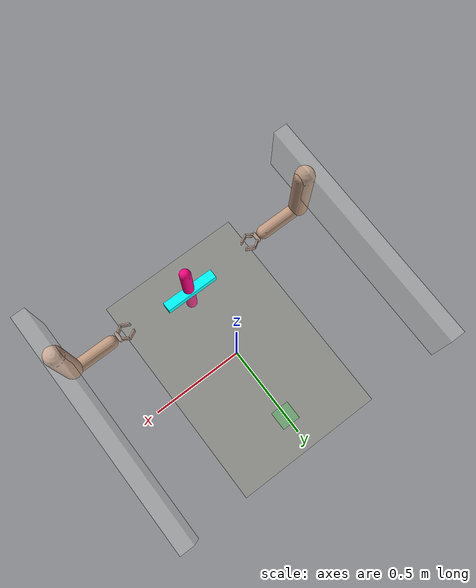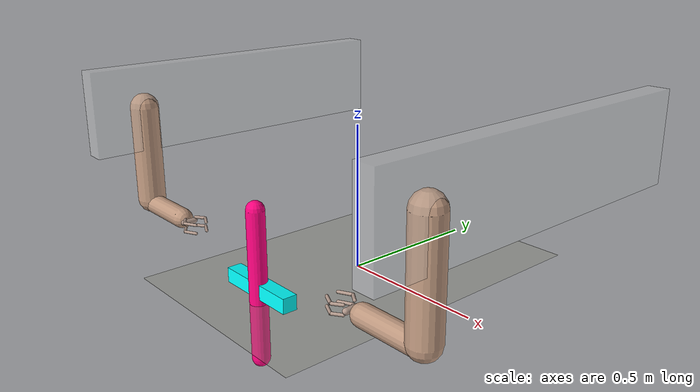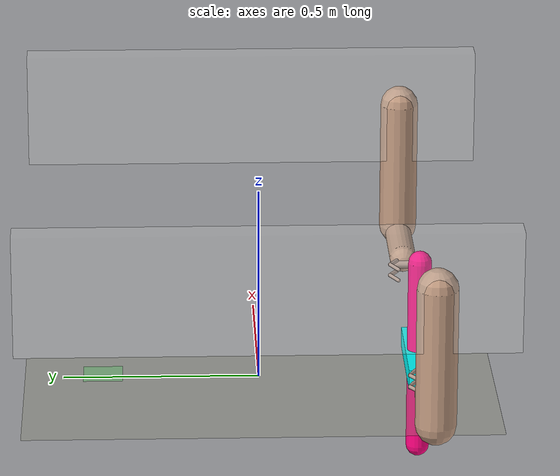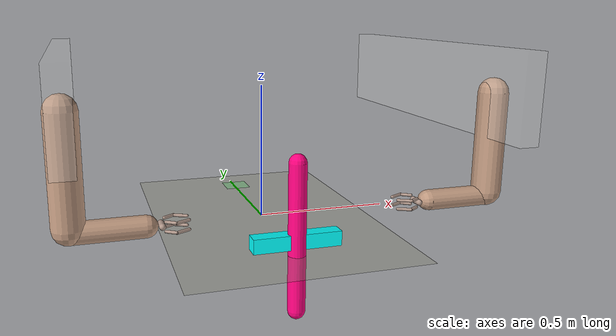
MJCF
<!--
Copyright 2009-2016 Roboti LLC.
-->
<mujoco model="arm_claw (v1.31)">
	<compiler 	inertiafromgeom="true"
				angle="radian"/>

	<size 	nuser_jnt="1"
			nuser_geom="1"/>

	<option	timestep="0.005"
			gravity="0 0 -3"
			viscosity="0"
			iterations="20"/>

	<asset>
		<material name="MatGnd" specular=".3" shininess=".3" reflectance="0.3" rgba=".5 .55 .5 1"/>
	</asset>

	<default>
		<joint limited="true" damping="1" stiffness="0" armature=".1" user="0"/>
		<geom solref="0.008 1" solimp="0.95 0.95 0.01" margin="0.001" user="0"/>
		<motor ctrllimited="true" ctrlrange="-1 1"/>
		<position ctrllimited="false"/>

		<default class='0'>
			<geom friction="1 0.005 0.001" rgba=".75 .6 .5 1" contype="1" conaffinity="0"/>
		</default>

		<default class='1'>
			<geom friction="1 0.005 0.001" rgba=".7 .6 .55 1" contype="1" conaffinity="0"/>
		</default>

		<default class='arm'>
			<joint damping="5"/>
		</default>
	</default>

	<worldbody>
		<light directional="true" cutoff="40" exponent="10" diffuse=".4 .4 .4" specular=".7 .7 .7" pos="0 0 1.5" dir="0 0 -1"/>
		<geom name="tableTop" material="MatGnd" type="plane" pos="0 0 0" size="0.4 0.6 0.5" rgba=".6 .6 .5 1" contype="1" conaffinity="1"/>

		<!--  ================= ARM ================= /-->
		<body name="board1" pos="-0.7 0 0.5" quat="0 0 0 0">

			<geom type="box" rgba="1 1 1 0.15" size="0.035 0.6 0.15" class="0"/>
			<body name="upperarm" pos="0 -0.4 0">
				<geom class="0" type="capsule" fromto="0 0 0 0 0 -0.345" size="0.05"/>
				<joint name='slidex1' type='slide' axis='0 1 0' range='-0.1 1'/>
				<joint name='slidey1' type='slide' axis='0 0 1' range='-0.1 0.2'/>
				<joint name='slidez1' type='slide' axis='1 0 0' range='0 0.25'/>

				<body name="forearm" pos="0 0 -0.36">
					<geom class="0" type="capsule" fromto="0 0 0 0.225 0 0" size="0.035"/>

		<!--  ================= Palm ================= /-->

					<body name="claw" pos="0.27 0 0" quat="0 1 0 0">
						<geom class="1" name="Geomclaw" type="capsule" fromto="0 .02 0 0 -.02 0" size="0.01" />
						<joint name="w_abduction" type="hinge" pos="0 0 0" axis="0 0 1" range="-.5 .5" user="006"/>
						<joint name="w_flexion" type="hinge" pos="0 0 0" axis="0 -1 0" range="-1.05 1.05" user="007"/>

						<body name="rightclaw" pos=".01 -.02 0" >
							<geom name="rightclaw_it" class="1" type="capsule" fromto="0 0 0.015 .03 -.02 0.015" 	size="0.005" />
							<geom name="rightclaw_ot" class="1" type="capsule" fromto=".03 -.02 0.015 .07 0 0.015" size="0.005" />
							<geom name="rightclaw_ib" class="1" type="capsule" fromto="0 0 -0.015 .03 -.02 -0.015" 	size="0.005" />
							<geom name="rightclaw_ob" class="1" type="capsule" fromto=".03 -.02 -0.015 .07 0 -0.015" size="0.005" />

						</body>

						<body name="leftclaw" pos=".01 .02 0">
							<geom name="leftclaw_it" class="1" type="capsule" fromto="0 0 0.015 .03 .02 0.015" 	size="0.005" />
							<geom name="leftclaw_ot" class="1" type="capsule" fromto=".03 .02 0.015 .07 0 0.015" size="0.005" />
							<geom name="leftclaw_ib" class="1" type="capsule" fromto="0 0 -0.015 .03 .02 -0.015" 	size="0.005" />
							<geom name="leftclaw_ob" class="1" type="capsule" fromto=".03 .02 -0.015 .07 0 -0.015" size="0.005" />
							<joint name="lc_close" type="hinge" pos="0 0 0" axis="0 0 1" range="-1.05 1.05" user="009"/>
						</body>

					</body>

				</body>

			</body>
		</body>

		<!--  ================= ARM 2 ================= /-->

		<body name="board2" pos="0.7 0 0.5" quat="0 0 0 0">
			<geom type="box" rgba="1 1 1 0.15" size="0.035 0.6 0.15" class="0"/>
			<joint class='arm' name="s_abduction" type="hinge" pos="0 0 0" axis="1 0 0" range="-1.57 .7" user="011"/>
			<body name="upperarm2" pos="0 -0.4 0" quat="0 0 0 -2">
				<geom class="0" type="capsule" fromto="0 0 0 0 0 -0.345" size="0.05"/>

				<joint name='slidex2' type='slide' axis='0 1 0' range='-1 0.1'/>
				<joint name='slidey2' type='slide' axis='0 0 1' range='-0.1 0.2'/>
				<joint name='slidez2' type='slide' axis='1 0 0' range='0 0.25'/>
				<body name="forearm2" pos="0 0 -0.36">
					<geom class="0" type="capsule" fromto="0 0 0 0.225 0 0" size="0.035"/>

		<!--  ================= Palm 2 ================= /-->

					<body name="claw2" pos="0.27 0 0" quat="0 1 0 0">
						<geom class="1" name="Geomclaw2" type="capsule" fromto="0 .02 0 0 -.02 0" size="0.01" />
						<joint name="w_abduction2" type="hinge" pos="0 0 0" axis="0 0 1" range="-.5 .5" user="016"/>
						<joint name="w_flexion2" type="hinge" pos="0 0 0" axis="0 -1 0" range="-1.05 1.05" user="017"/>

						<body name="rightclaw2" pos=".01 -.02 0" >
							<geom name="rightclaw_it2" class="1" type="capsule" fromto="0 0 0.015 .03 -.02 0.015" 	size="0.005" />
							<geom name="rightclaw_ot2" class="1" type="capsule" fromto=".03 -.02 0.015 .07 0 0.015" size="0.005" />
							<geom name="rightclaw_ib2" class="1" type="capsule" fromto="0 0 -0.015 .03 -.02 -0.015" 	size="0.005" />
							<geom name="rightclaw_ob2" class="1" type="capsule" fromto=".03 -.02 -0.015 .07 0 -0.015" size="0.005" />
							<joint name="rc_close2" type="hinge" pos="0 0 0" axis="0 0 1" range="-1.05 1.05" user="018"/>
						</body>

						<body name="leftclaw2" pos=".01 .02 0">
							<geom name="leftclaw_it2" class="1" type="capsule" fromto="0 0 0.015 .03 .02 0.015" 	size="0.005" />
							<geom name="leftclaw_ot2" class="1" type="capsule" fromto=".03 .02 0.015 .07 0 0.015" size="0.005" />
							<geom name="leftclaw_ib2" class="1" type="capsule" fromto="0 0 -0.015 .03 .02 -0.015" 	size="0.005" />
							<geom name="leftclaw_ob2" class="1" type="capsule" fromto=".03 .02 -0.015 .07 0 -0.015" size="0.005" />
							<joint name="lc_close2" type="hinge" pos="0 0 0" axis="0 0 1" range="-1.05 1.05" user="019"/>
						</body>

					</body>

				</body>

			</body>
		</body>
		<!--  ================= OBJECT ================= pos="0 -0.4 0.06" quat="0 0 0 0" /-->

		<!-- LONG CAPSULE -->
		<body name="object" pos="0 -0.41 0.055" quat="0 0 0 0" euler="1.5 1.6 0">
			<geom  type="capsule" rgba="1 0 0.5 1" size="0.030 0.25 0.025" friction="0" user="1"/>
			<joint name="fr" type="free" limited='false' damping="0.2" armature="0" />
		</body>

		<!--SMALL CUBOID WITHOUT HEIGHT -->
		<body name="object" pos="0 -0.4 0.045" quat="0 0 0 0" euler="0 0 0">
			<geom  type="box" rgba=" 0 1 1 1" size="0.15 0.025 0.025" user="1"/>
			<joint name="fr" type="free" limited='false' damping="0" armature="0" />
		</body>

		<body name="goal" pos="0 0.4 0.01" quat="0 0 0 0" >
			<geom  type="box" rgba="0 1 0 0.1" size="0.05 0.05 0.000001" user="1" contype="0" conaffinity="1"/>
			<joint name="fr2" type="free" limited='false' damping="2" armature="0"/>
		</body>

	</worldbody>

	<actuator>

		<position joint="slidex1" name="sliderx1" kp="10" ctrlrange="-1 1"/>
		<position joint="slidey1" name="slidery1" kp="10" ctrlrange="-1 1"/>
		<position joint="slidez1" name="sliderz1" kp="10" ctrlrange="-1 1"/>

		<position joint='lc_close' 		name='Alc_close' 	kp="10"  ctrlrange='-1.05 1.05'/>

		<position joint="slidex2" name="sliderx2" kp="10" ctrlrange="-1 1"/>
		<position joint="slidey2" name="slidery2" kp="10" ctrlrange="-1 1"/>
		<position joint="slidez2" name="sliderz2" kp="10" ctrlrange="-1 1"/>

		<position joint='lc_close2' 		name='Alc_close2' 	kp="10"  ctrlrange='-1.05 1.05'/>
	</actuator>

</mujoco>
